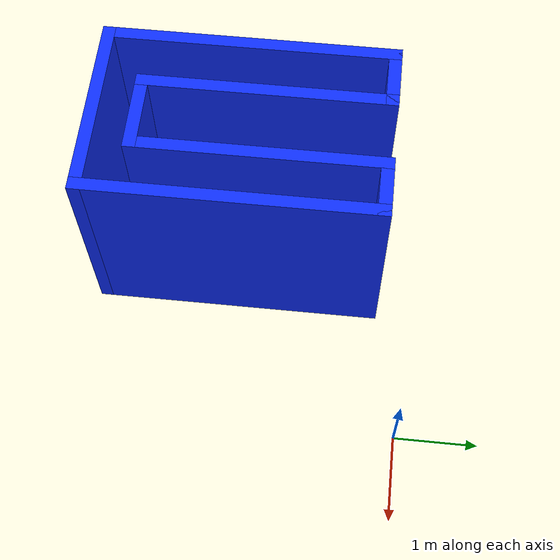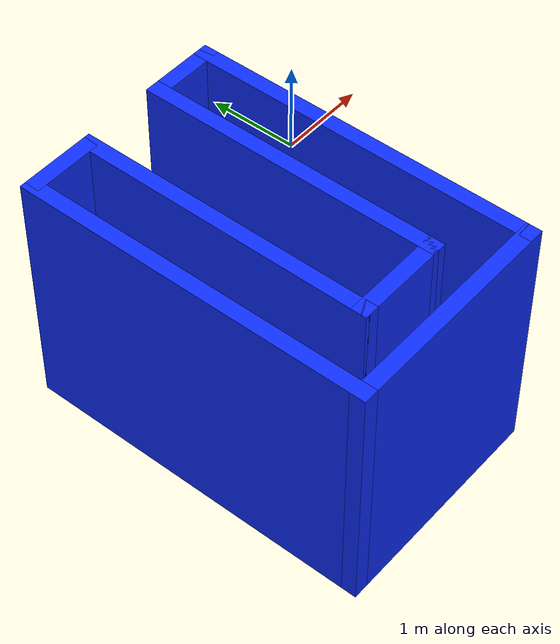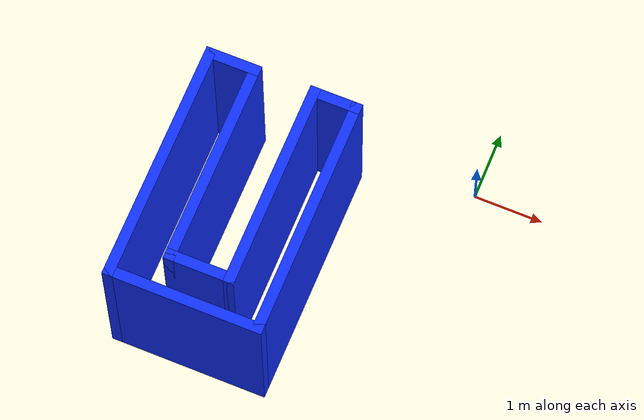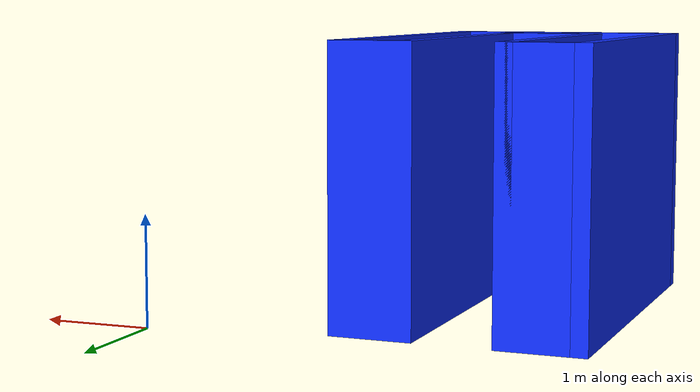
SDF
<?xml version='1.0'?>
<sdf version='1.6'>
  <model name='home_service_robot'>
    <pose frame=''>-2.69 -2.065 0 0 -0 0</pose>
    <link name='Wall_0'>
      <collision name='Wall_0_Collision'>
        <geometry>
          <box>
            <size>0.75 0.15 2.5</size>
          </box>
        </geometry>
        <pose frame=''>0 0 1.25 0 -0 0</pose>
      </collision>
      <visual name='Wall_0_Visual'>
        <pose frame=''>0 0 1.25 0 -0 0</pose>
        <geometry>
          <box>
            <size>0.75 0.15 2.5</size>
          </box>
        </geometry>
        <material>
          <script>
            <uri>file://media/materials/scripts/gazebo.material</uri>
            <name>Gazebo/Grey</name>
          </script>
          <ambient>0.054902 0.180392 1 1</ambient>
        </material>
        <meta>
          <layer>0</layer>
        </meta>
      </visual>
      <pose frame=''>-0.7 1.675 0 0 -0 0</pose>
    </link>
    <link name='Wall_1'>
      <collision name='Wall_1_Collision'>
        <geometry>
          <box>
            <size>3 0.15 2.5</size>
          </box>
        </geometry>
        <pose frame=''>0 0 1.25 0 -0 0</pose>
      </collision>
      <visual name='Wall_1_Visual'>
        <pose frame=''>0 0 1.25 0 -0 0</pose>
        <geometry>
          <box>
            <size>3 0.15 2.5</size>
          </box>
        </geometry>
        <material>
          <script>
            <uri>file://media/materials/scripts/gazebo.material</uri>
            <name>Gazebo/Grey</name>
          </script>
          <ambient>0.054902 0.180392 1 1</ambient>
        </material>
        <meta>
          <layer>0</layer>
        </meta>
      </visual>
      <pose frame=''>-0.4 0.25 0 0 0 -1.5708</pose>
    </link>
    <link name='Wall_2'>
      <collision name='Wall_2_Collision'>
        <geometry>
          <box>
            <size>1 0.15 2.5</size>
          </box>
        </geometry>
        <pose frame=''>0 0 1.25 0 -0 0</pose>
      </collision>
      <visual name='Wall_2_Visual'>
        <pose frame=''>0 0 1.25 0 -0 0</pose>
        <geometry>
          <box>
            <size>1 0.15 2.5</size>
          </box>
        </geometry>
        <material>
          <script>
            <uri>file://media/materials/scripts/gazebo.material</uri>
            <name>Gazebo/Grey</name>
          </script>
          <ambient>0.054902 0.180392 1 1</ambient>
        </material>
        <meta>
          <layer>0</layer>
        </meta>
      </visual>
      <pose frame=''>0.025 -1.175 0 0 -0 0</pose>
    </link>
    <link name='Wall_3'>
      <collision name='Wall_3_Collision'>
        <geometry>
          <box>
            <size>3 0.15 2.5</size>
          </box>
        </geometry>
        <pose frame=''>0 0 1.25 0 -0 0</pose>
      </collision>
      <visual name='Wall_3_Visual'>
        <pose frame=''>0 0 1.25 0 -0 0</pose>
        <geometry>
          <box>
            <size>3 0.15 2.5</size>
          </box>
        </geometry>
        <material>
          <script>
            <uri>file://media/materials/scripts/gazebo.material</uri>
            <name>Gazebo/Grey</name>
          </script>
          <ambient>0.054902 0.180392 1 1</ambient>
        </material>
        <meta>
          <layer>0</layer>
        </meta>
      </visual>
      <pose frame=''>0.45 0.25 0 0 -0 1.5708</pose>
    </link>
    <link name='Wall_6'>
      <collision name='Wall_6_Collision'>
        <geometry>
          <box>
            <size>0.75 0.15 2.5</size>
          </box>
        </geometry>
        <pose frame=''>0 0 1.25 0 -0 0</pose>
      </collision>
      <visual name='Wall_6_Visual'>
        <pose frame=''>0 0 1.25 0 -0 0</pose>
        <geometry>
          <box>
            <size>0.75 0.15 2.5</size>
          </box>
        </geometry>
        <material>
          <script>
            <uri>file://media/materials/scripts/gazebo.material</uri>
            <name>Gazebo/Grey</name>
          </script>
          <ambient>0.054902 0.180392 1 1</ambient>
        </material>
        <meta>
          <layer>0</layer>
        </meta>
      </visual>
      <pose frame=''>0.75 1.675 0 0 -0 0</pose>
    </link>
    <link name='Wall_7'>
      <collision name='Wall_7_Collision'>
        <geometry>
          <box>
            <size>3.5 0.15 2.5</size>
          </box>
        </geometry>
        <pose frame=''>0 0 1.25 0 -0 0</pose>
      </collision>
      <visual name='Wall_7_Visual'>
        <pose frame=''>0 0 1.25 0 -0 0</pose>
        <geometry>
          <box>
            <size>3.5 0.15 2.5</size>
          </box>
        </geometry>
        <material>
          <script>
            <uri>file://media/materials/scripts/gazebo.material</uri>
            <name>Gazebo/Grey</name>
          </script>
          <ambient>0.054902 0.180392 1 1</ambient>
        </material>
        <meta>
          <layer>0</layer>
        </meta>
      </visual>
      <pose frame=''>1.05 0 0 0 0 -1.5708</pose>
    </link>
    <link name='Wall_8'>
      <collision name='Wall_8_Collision'>
        <geometry>
          <box>
            <size>2.25 0.15 2.5</size>
          </box>
        </geometry>
        <pose frame=''>0 0 1.25 0 -0 0</pose>
      </collision>
      <visual name='Wall_8_Visual'>
        <pose frame=''>0 0 1.25 0 -0 0</pose>
        <geometry>
          <box>
            <size>2.25 0.15 2.5</size>
          </box>
        </geometry>
        <material>
          <script>
            <uri>file://media/materials/scripts/gazebo.material</uri>
            <name>Gazebo/Grey</name>
          </script>
          <ambient>0.054902 0.180392 1 1</ambient>
        </material>
        <meta>
          <layer>0</layer>
        </meta>
      </visual>
      <pose frame=''>0 -1.675 0 0 -0 3.14159</pose>
    </link>
    <link name='Wall_9'>
      <collision name='Wall_9_Collision'>
        <geometry>
          <box>
            <size>3.5 0.15 2.5</size>
          </box>
        </geometry>
        <pose frame=''>0 0 1.25 0 -0 0</pose>
      </collision>
      <visual name='Wall_9_Visual'>
        <pose frame=''>0 0 1.25 0 -0 0</pose>
        <geometry>
          <box>
            <size>3.5 0.15 2.5</size>
          </box>
        </geometry>
        <material>
          <script>
            <uri>file://media/materials/scripts/gazebo.material</uri>
            <name>Gazebo/Grey</name>
          </script>
          <ambient>0.054902 0.180392 1 1</ambient>
        </material>
        <meta>
          <layer>0</layer>
        </meta>
      </visual>
      <pose frame=''>-1.05 0 0 0 -0 1.5708</pose>
    </link>
    <static>1</static>
  </model>
</sdf>
